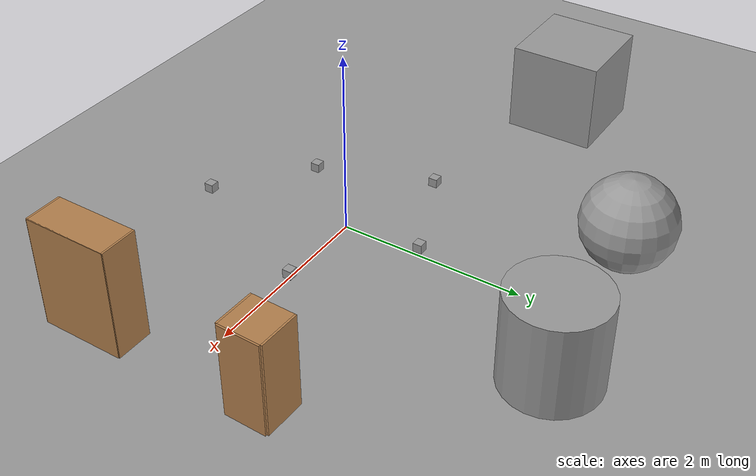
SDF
<sdf version="1.4">
 <world name="default">
  <light name="sun" type="directional">
   <pose>0 0 10 0 -0 0</pose>
   <diffuse>0.8 0.8 0.8 1</diffuse>
   <specular>0.2 0.2 0.2 1</specular>
   <attenuation>
    <range>1000</range>
    <constant>0.9</constant>
    <linear>0.01</linear>
    <quadratic>0.001</quadratic>
   </attenuation>
   <direction>0.5 0.1 -0.9</direction>
  </light>
  <scene><ambient>0.4 0.4 0.4 1</ambient><background>0.7 0.7 0.7 1</background><shadows>1</shadows></scene>
  <physics type="ode">
   <max_step_size>0.01</max_step_size>
   <real_time_factor>1</real_time_factor>
   <real_time_update_rate>100</real_time_update_rate>
   <gravity>0 0 -9.8</gravity>
  </physics>
  <model name="ground_plane_0">
   <static>1</static>
   <link name="link">
    <collision name="collision">
     <geometry><plane><normal>0 0 1</normal><size>100 100</size></plane></geometry>
     <surface><friction><ode><mu>100</mu><mu2>50</mu2></ode></friction></surface>
    </collision>
    <visual name="visual">
     <cast_shadows>0</cast_shadows>
     <geometry><plane><normal>0 0 1</normal><size>100 100</size></plane></geometry>
     <material>
      <script><uri>file://media/materials/scripts/gazebo.material</uri><name>Gazebo/Grey</name></script>
     </material>
    </visual>
    <velocity_decay><linear>0</linear><angular>0</angular></velocity_decay>
   </link>
   <pose>0.497681 0 0 0 -0 0</pose>
  </model>
  <spherical_coordinates>
   <surface_model>EARTH_WGS84</surface_model>
   <latitude_deg>0</latitude_deg>
   <longitude_deg>0</longitude_deg>
   <elevation>0</elevation>
   <heading_deg>0</heading_deg>
  </spherical_coordinates>
  <model name="unit_box_1">
   <pose>0.962042 -0.019632 0.049125 6.5e-05 2.9e-05 -0.00135</pose>
   <link name="link">
    <inertial>
     <mass>1</mass>
     <inertia><ixx>1</ixx><ixy>0</ixy><ixz>0</ixz><iyy>1</iyy><iyz>0</iyz><izz>1</izz></inertia>
    </inertial>
    <collision name="collision"><geometry><box><size>0.1 0.1 0.1</size></box></geometry></collision>
    <visual name="visual">
     <geometry><box><size>0.1 0.1 0.1</size></box></geometry>
     <material>
      <script><uri>file://media/materials/scripts/gazebo.material</uri><name>Gazebo/Grey</name></script>
     </material>
    </visual>
    <velocity_decay><linear>0</linear><angular>0</angular></velocity_decay>
   </link>
   <static>0</static>
  </model>
  <model name="unit_box_2">
   <pose>-0.08388 0.833659 0.049125 6.5e-05 2.9e-05 -0.000998</pose>
   <link name="link">
    <inertial>
     <mass>1</mass>
     <inertia><ixx>1</ixx><ixy>0</ixy><ixz>0</ixz><iyy>1</iyy><iyz>0</iyz><izz>1</izz></inertia>
    </inertial>
    <collision name="collision"><geometry><box><size>0.1 0.1 0.1</size></box></geometry></collision>
    <visual name="visual">
     <geometry><box><size>0.1 0.1 0.1</size></box></geometry>
     <material>
      <script><uri>file://media/materials/scripts/gazebo.material</uri><name>Gazebo/Grey</name></script>
     </material>
    </visual>
    <velocity_decay><linear>0</linear><angular>0</angular></velocity_decay>
   </link>
   <static>0</static>
  </model>
  <model name="unit_box_3">
   <pose>0.237868 -1.59996 0.049125 6.5e-05 2.9e-05 -0.001267</pose>
   <link name="link">
    <inertial>
     <mass>1</mass>
     <inertia><ixx>1</ixx><ixy>0</ixy><ixz>0</ixz><iyy>1</iyy><iyz>0</iyz><izz>1</izz></inertia>
    </inertial>
    <collision name="collision"><geometry><box><size>0.1 0.1 0.1</size></box></geometry></collision>
    <visual name="visual">
     <geometry><box><size>0.1 0.1 0.1</size></box></geometry>
     <material>
      <script><uri>file://media/materials/scripts/gazebo.material</uri><name>Gazebo/Grey</name></script>
     </material>
    </visual>
    <velocity_decay><linear>0</linear><angular>0</angular></velocity_decay>
   </link>
   <static>0</static>
  </model>
  <model name="unit_box_4">
   <pose>-0.704644 -0.868091 0.049125 -6.5e-05 2.9e-05 0.001068</pose>
   <link name="link">
    <inertial>
     <mass>1</mass>
     <inertia><ixx>1</ixx><ixy>0</ixy><ixz>0</ixz><iyy>1</iyy><iyz>0</iyz><izz>1</izz></inertia>
    </inertial>
    <collision name="collision"><geometry><box><size>0.1 0.1 0.1</size></box></geometry></collision>
    <visual name="visual">
     <geometry><box><size>0.1 0.1 0.1</size></box></geometry>
     <material>
      <script><uri>file://media/materials/scripts/gazebo.material</uri><name>Gazebo/Grey</name></script>
     </material>
    </visual>
    <velocity_decay><linear>0</linear><angular>0</angular></velocity_decay>
   </link>
   <static>0</static>
  </model>
  <model name="unit_box_5">
   <pose>-1.1601 0.371921 0.049125 6.5e-05 2.9e-05 -0.001084</pose>
   <link name="link">
    <inertial>
     <mass>1</mass>
     <inertia><ixx>1</ixx><ixy>0</ixy><ixz>0</ixz><iyy>1</iyy><iyz>0</iyz><izz>1</izz></inertia>
    </inertial>
    <collision name="collision"><geometry><box><size>0.1 0.1 0.1</size></box></geometry></collision>
    <visual name="visual">
     <geometry><box><size>0.1 0.1 0.1</size></box></geometry>
     <material>
      <script><uri>file://media/materials/scripts/gazebo.material</uri><name>Gazebo/Grey</name></script>
     </material>
    </visual>
    <velocity_decay><linear>0</linear><angular>0</angular></velocity_decay>
   </link>
   <static>0</static>
  </model>
  <model name="unit_cylinder_1">
   <pose>0.85803 2.76276 0.49912 -0 -0 -1e-06</pose>
   <link name="link">
    <inertial>
     <mass>1</mass>
     <inertia><ixx>1</ixx><ixy>0</ixy><ixz>0</ixz><iyy>1</iyy><iyz>0</iyz><izz>1</izz></inertia>
    </inertial>
    <collision name="collision">
     <geometry><cylinder><radius>0.5</radius><length>1</length></cylinder></geometry>
    </collision>
    <visual name="visual">
     <geometry><cylinder><radius>0.5</radius><length>1</length></cylinder></geometry>
     <material>
      <script><uri>file://media/materials/scripts/gazebo.material</uri><name>Gazebo/Grey</name></script>
     </material>
    </visual>
    <velocity_decay><linear>0</linear><angular>0</angular></velocity_decay>
   </link>
   <static>0</static>
  </model>
  <model name="unit_sphere_1">
   <pose>-1.01555 2.64379 0.5 0 -0 0</pose>
   <link name="link">
    <inertial>
     <mass>1</mass>
     <inertia><ixx>1</ixx><ixy>0</ixy><ixz>0</ixz><iyy>1</iyy><iyz>0</iyz><izz>1</izz></inertia>
    </inertial>
    <collision name="collision"><geometry><sphere><radius>0.5</radius></sphere></geometry></collision>
    <visual name="visual">
     <geometry><sphere><radius>0.5</radius></sphere></geometry>
     <material>
      <script><uri>file://media/materials/scripts/gazebo.material</uri><name>Gazebo/Grey</name></script>
     </material>
    </visual>
    <velocity_decay><linear>0</linear><angular>0</angular></velocity_decay>
   </link>
   <static>0</static>
  </model>
  <model name="unit_box_1_0">
   <pose>-3.21678 0.965523 0.5 0 -0 0</pose>
   <link name="link">
    <inertial>
     <mass>1</mass>
     <inertia><ixx>1</ixx><ixy>0</ixy><ixz>0</ixz><iyy>1</iyy><iyz>0</iyz><izz>1</izz></inertia>
    </inertial>
    <collision name="collision"><geometry><box><size>1 1 1</size></box></geometry></collision>
    <visual name="visual">
     <geometry><box><size>1 1 1</size></box></geometry>
     <material>
      <script><uri>file://media/materials/scripts/gazebo.material</uri><name>Gazebo/Grey</name></script>
     </material>
    </visual>
    <velocity_decay><linear>0</linear><angular>0</angular></velocity_decay>
   </link>
   <static>0</static>
  </model>
  <model name="cabinet">
   <static>1</static>
   <link name="cabinet_bottom_plate">
    <inertial>
     <pose>0 0 -1 0 -0 0</pose>
     <inertia><ixx>2.05</ixx><ixy>0</ixy><ixz>0</ixz><iyy>2.05</iyy><iyz>0</iyz><izz>2.05</izz></inertia>
     <mass>25</mass>
    </inertial>
    <collision name="cabinet_bottom_plate_geom">
     <pose>0 0 0.01 0 -0 0</pose>
     <geometry><box><size>0.45 0.45 0.02</size></box></geometry>
    </collision>
    <visual name="cabinet_bottom_plate_geom_visual">
     <pose>0 0 0.01 0 -0 0</pose>
     <geometry><box><size>0.45 0.45 0.02</size></box></geometry>
     <material>
      <script><uri>file://media/materials/scripts/gazebo.material</uri><name>Gazebo/Wood</name></script>
     </material>
    </visual>
    <collision name="cabinet_bottom_plate_geom_cabinet_back_plate">
     <pose>0.235 0 0.51 0 -0 0</pose>
     <geometry><box><size>0.02 0.45 1.02</size></box></geometry>
    </collision>
    <visual name="cabinet_bottom_plate_geom_cabinet_back_plate_visual">
     <pose>0.235 0 0.51 0 -0 0</pose>
     <geometry><box><size>0.02 0.45 1.02</size></box></geometry>
     <material>
      <script><uri>file://media/materials/scripts/gazebo.material</uri><name>Gazebo/Wood</name></script>
     </material>
    </visual>
    <collision name="cabinet_bottom_plate_geom_cabinet_left_plate">
     <pose>0 0.235 0.51 0 -0 0</pose>
     <geometry><box><size>0.45 0.02 1.02</size></box></geometry>
    </collision>
    <visual name="cabinet_bottom_plate_geom_cabinet_left_plate_visual">
     <pose>0 0.235 0.51 0 -0 0</pose>
     <geometry><box><size>0.45 0.02 1.02</size></box></geometry>
     <material>
      <script><uri>file://media/materials/scripts/gazebo.material</uri><name>Gazebo/Wood</name></script>
     </material>
    </visual>
    <collision name="cabinet_bottom_plate_geom_cabinet_middle_plate">
     <pose>0 0 0.51 0 -0 0</pose>
     <geometry><box><size>0.45 0.45 0.02</size></box></geometry>
    </collision>
    <visual name="cabinet_bottom_plate_geom_cabinet_middle_plate_visual">
     <pose>0 0 0.51 0 -0 0</pose>
     <geometry><box><size>0.45 0.45 0.02</size></box></geometry>
     <material>
      <script><uri>file://media/materials/scripts/gazebo.material</uri><name>Gazebo/Wood</name></script>
     </material>
    </visual>
    <collision name="cabinet_bottom_plate_geom_cabinet_right_plate">
     <pose>0 -0.235 0.51 0 -0 0</pose>
     <geometry><box><size>0.45 0.02 1.02</size></box></geometry>
    </collision>
    <visual name="cabinet_bottom_plate_geom_cabinet_right_plate_visual">
     <pose>0 -0.235 0.51 0 -0 0</pose>
     <geometry><box><size>0.45 0.02 1.02</size></box></geometry>
     <material>
      <script><uri>file://media/materials/scripts/gazebo.material</uri><name>Gazebo/Wood</name></script>
     </material>
    </visual>
    <collision name="cabinet_bottom_plate_geom_cabinet_top_plate">
     <pose>0 0 1.01 0 -0 0</pose>
     <geometry><box><size>0.45 0.45 0.02</size></box></geometry>
    </collision>
    <visual name="cabinet_bottom_plate_geom_cabinet_top_plate_visual">
     <pose>0 0 1.01 0 -0 0</pose>
     <geometry><box><size>0.45 0.45 0.02</size></box></geometry>
     <material>
      <script><uri>file://media/materials/scripts/gazebo.material</uri><name>Gazebo/Wood</name></script>
     </material>
    </visual>
    <velocity_decay><linear>0</linear><angular>0</angular></velocity_decay>
   </link>
   <pose>2.52008 0.848837 0 0 0 -0.026153</pose>
  </model>
  <model name="bookshelf_0">
   <static>1</static>
   <link name="link">
    <inertial><mass>1</mass></inertial>
    <collision name="back">
     <pose>0 0.005 0.6 0 -0 0</pose>
     <geometry><box><size>0.9 0.01 1.2</size></box></geometry>
    </collision>
    <visual name="visual1">
     <pose>0 0.005 0.6 0 -0 0</pose>
     <geometry><box><size>0.9 0.01 1.2</size></box></geometry>
     <material>
      <script><uri>file://media/materials/scripts/gazebo.material</uri><name>Gazebo/Wood</name></script>
     </material>
    </visual>
    <collision name="left_side">
     <pose>0.45 -0.195 0.6 0 -0 0</pose>
     <geometry><box><size>0.02 0.4 1.2</size></box></geometry>
    </collision>
    <visual name="visual2">
     <pose>0.45 -0.195 0.6 0 -0 0</pose>
     <geometry><box><size>0.02 0.4 1.2</size></box></geometry>
     <material>
      <script><uri>file://media/materials/scripts/gazebo.material</uri><name>Gazebo/Wood</name></script>
     </material>
    </visual>
    <collision name="right_side">
     <pose>-0.45 -0.195 0.6 0 -0 0</pose>
     <geometry><box><size>0.02 0.4 1.2</size></box></geometry>
    </collision>
    <visual name="visual3">
     <pose>-0.45 -0.195 0.6 0 -0 0</pose>
     <geometry><box><size>0.02 0.4 1.2</size></box></geometry>
     <material>
      <script><uri>file://media/materials/scripts/gazebo.material</uri><name>Gazebo/Wood</name></script>
     </material>
    </visual>
    <collision name="bottom">
     <pose>0 -0.195 0.03 0 -0 0</pose>
     <geometry><box><size>0.88 0.4 0.06</size></box></geometry>
    </collision>
    <visual name="visual4">
     <pose>0 -0.195 0.03 0 -0 0</pose>
     <geometry><box><size>0.88 0.4 0.06</size></box></geometry>
     <material>
      <script><uri>file://media/materials/scripts/gazebo.material</uri><name>Gazebo/Wood</name></script>
     </material>
    </visual>
    <collision name="top">
     <pose>0 -0.195 1.19 0 -0 0</pose>
     <geometry><box><size>0.88 0.4 0.02</size></box></geometry>
    </collision>
    <visual name="visual5">
     <pose>0 -0.195 1.19 0 -0 0</pose>
     <geometry><box><size>0.88 0.4 0.02</size></box></geometry>
     <material>
      <script><uri>file://media/materials/scripts/gazebo.material</uri><name>Gazebo/Wood</name></script>
     </material>
    </visual>
    <collision name="low_shelf">
     <pose>0 -0.195 0.43 0 -0 0</pose>
     <geometry><box><size>0.88 0.4 0.02</size></box></geometry>
    </collision>
    <visual name="visual6">
     <pose>0 -0.195 0.43 0 -0 0</pose>
     <geometry><box><size>0.88 0.4 0.02</size></box></geometry>
     <material>
      <script><uri>file://media/materials/scripts/gazebo.material</uri><name>Gazebo/Wood</name></script>
     </material>
    </visual>
    <collision name="high_shelf">
     <pose>0 -0.195 0.8 0 -0 0</pose>
     <geometry><box><size>0.88 0.4 0.02</size></box></geometry>
    </collision>
    <visual name="visual7">
     <pose>0 -0.195 0.8 0 -0 0</pose>
     <geometry><box><size>0.88 0.4 0.02</size></box></geometry>
     <material>
      <script><uri>file://media/materials/scripts/gazebo.material</uri><name>Gazebo/Wood</name></script>
     </material>
    </visual>
    <velocity_decay><linear>0</linear><angular>0</angular></velocity_decay>
   </link>
   <pose>2.72855 -1.06991 0 0 0 -1.5755</pose>
  </model>
 </world>
</sdf>
